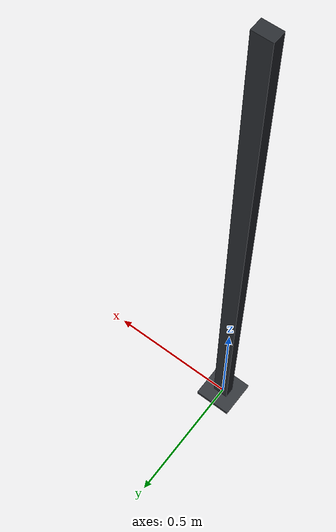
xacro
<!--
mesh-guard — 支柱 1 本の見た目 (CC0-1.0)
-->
<?xml version="1.0"?>
<robot xmlns:xacro="http://www.ros.org/wiki/xacro" name="mesh-guard-post">
  <xacro:arg name="height" default="2.0"/>
  <xacro:arg name="section_w" default="0.06"/>
  <xacro:arg name="section_d" default="0.04"/>
  <xacro:arg name="plate" default="0.0"/>
  <xacro:arg name="square" default="0"/>

  <xacro:property name="h" value="$(arg height)"/>
  <xacro:property name="sw" value="$(arg section_w)"/>
  <xacro:property name="sd" value="${sw if $(arg square) > 0 else $(arg section_d)}"/>
  <!-- 既定のベースプレートは断面の 2.4 倍角。0 を渡すとその既定に落ちる -->
  <xacro:property name="pl" value="${$(arg plate) if $(arg plate) > 0 else sw * 2.4}"/>

  <material name="post"><color rgba="0.16 0.17 0.19 1"/></material>
  <material name="plate"><color rgba="0.20 0.21 0.23 1"/></material>

  <link name="post"/>

  <link name="column">
    <visual>
      <origin xyz="0 0 ${h/2}"/>
      <geometry><box size="${sw} ${sd} ${h}"/></geometry>
      <material name="post"/>
    </visual>
  </link>
  <joint name="j_column" type="fixed"><parent link="post"/><child link="column"/></joint>

  <link name="base">
    <visual>
      <origin xyz="0 0 ${sw/8}"/>
      <geometry><box size="${pl} ${pl} ${sw/4}"/></geometry>
      <material name="plate"/>
    </visual>
  </link>
  <joint name="j_base" type="fixed"><parent link="post"/><child link="base"/></joint>
</robot>
